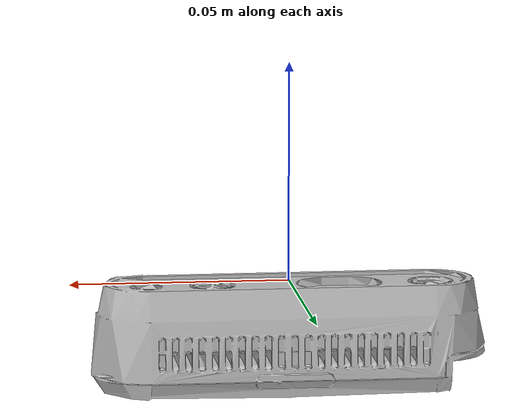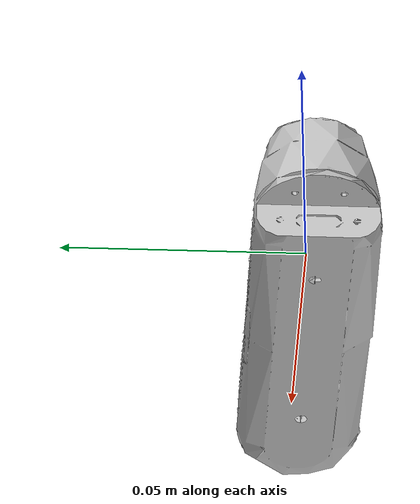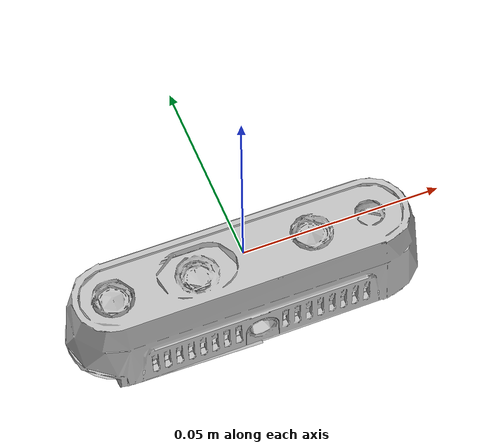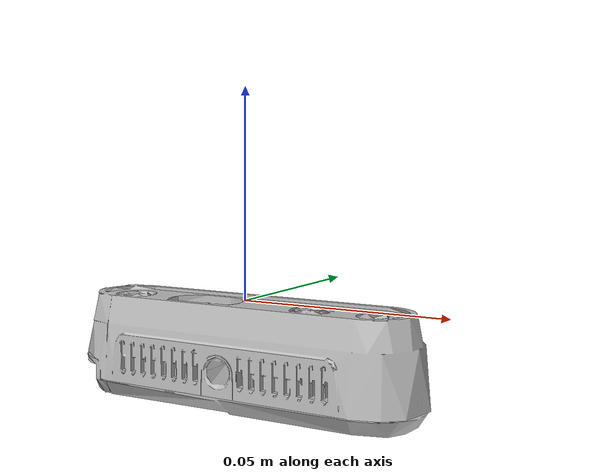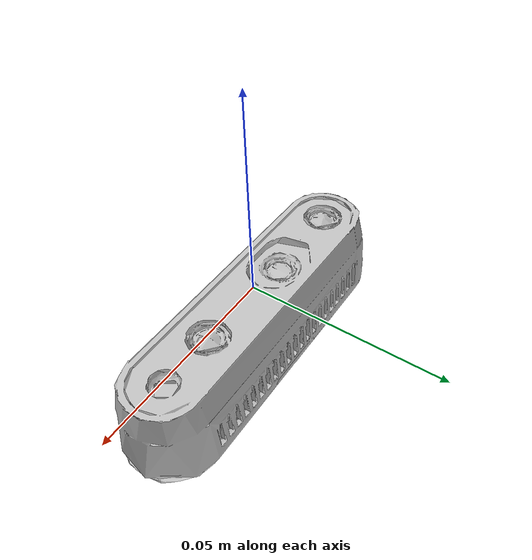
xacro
<?xml version="1.0"?>
<robot name="d435" xmlns:xacro="http://ros.org/wiki/xacro">

  <link name="d435_link">
    <visual>
      <origin xyz="0 0 0" rpy="0 0 0"/>
      <geometry>
        <!-- Malha com textura (caso a .dae tenha texturas embutidas) -->
        <mesh filename="package://realsense2_description/meshes/d435.dae" scale="1 1 1"/>
      </geometry>
      <!-- Removido o material que sobrescrevia a textura do .dae -->
    </visual>

    <collision>
      <origin xyz="0 0 0" rpy="0 0 0"/>
      <geometry>
        <box size="0.09 0.025 0.025"/>
      </geometry>
    </collision>

    <inertial>
      <mass value="0.072"/>
      <origin xyz="0 0 0"/>
      <inertia ixx="0.0001" ixy="0" ixz="0" iyy="0.0001" iyz="0" izz="0.0001"/>
    </inertial>
  </link>

  <gazebo reference="d435_link">
    <sensor type="depth" name="d435_depth">
      <pose>0 0 0 0 -1.5708 0</pose>
      <always_on>true</always_on>
      <update_rate>30.0</update_rate>

      <camera>
        <horizontal_fov>1.3962634</horizontal_fov>
        <image>
          <width>800</width>
          <height>600</height>
        </image>
        <clip><near>0.1</near><far>10.0</far></clip>
      </camera>

      <!-- plugin específico de profundidade -->
      <plugin name="gazebo_ros_depth_camera" filename="libgazebo_ros_depth_camera.so">
        <robotNamespace>/d435</robotNamespace>
        <frame_name>d435_link</frame_name>

        <!-- Tópicos padrão -->
        <depth_image_topic_name>depth/image_raw</depth_image_topic_name>
        <camera_info_topic_name>depth/camera_info</camera_info_topic_name>
        <point_cloud_topic_name>depth/points</point_cloud_topic_name>

        <pointCloudCutoff>0.03</pointCloudCutoff>

      </plugin>
    </sensor>
  </gazebo>

</robot>
